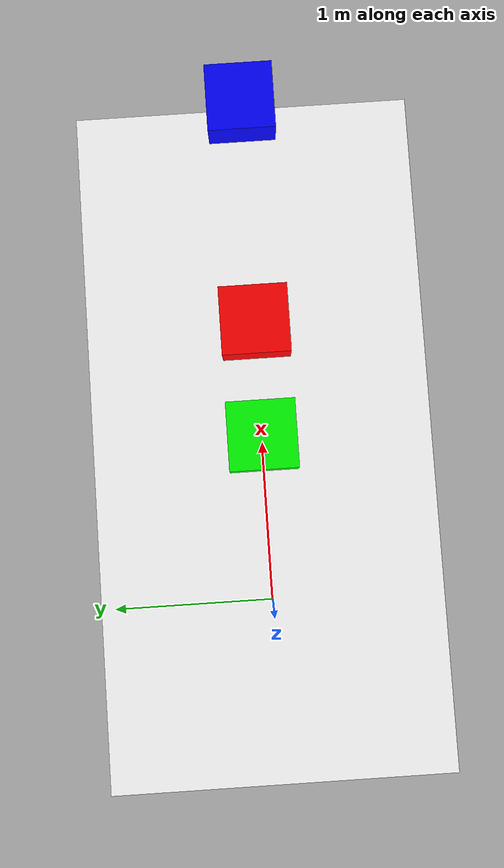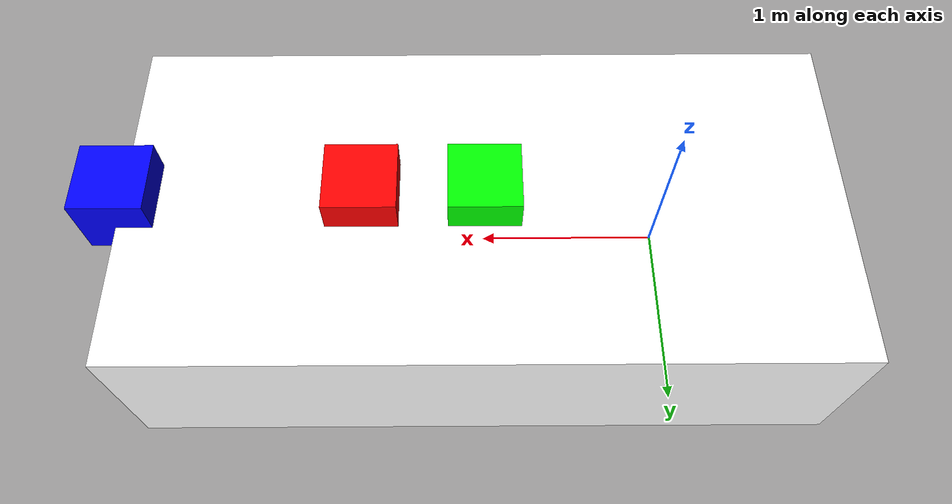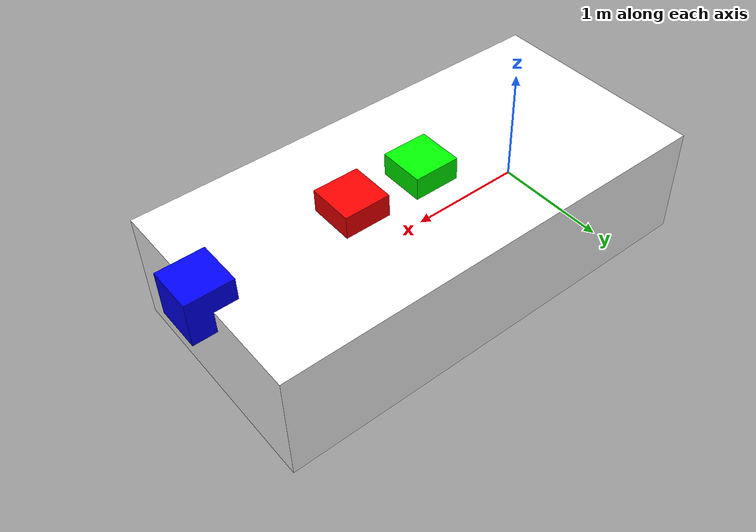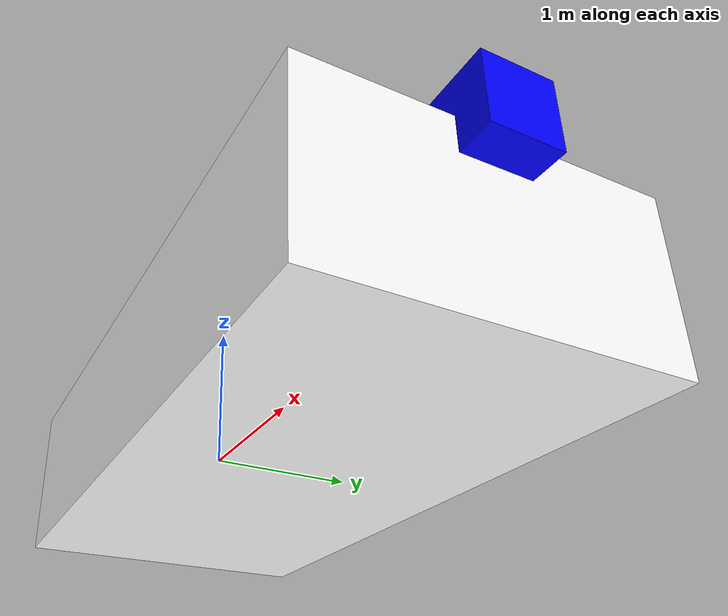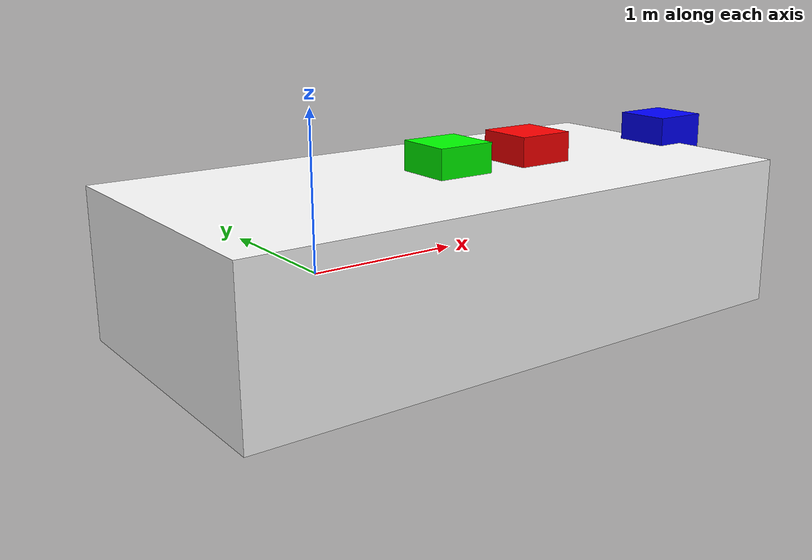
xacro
<?xml version="1.0" ?>
<robot name="voiture" xmlns:xacro="http://ros.org/wiki/xacro">

<link name="base_link">
    <visual name="car">
      <origin rpy="0 0 0" xyz="1 0 0"/>
      <geometry>
        <box size="4 2 1"/>
      </geometry>
      <material name="white">
        <color rgba="1 1 1 1"/>
      </material>
    </visual>

    <visual name="camera_me">
      <origin rpy="0 0 0" xyz="1.67 0 0.5"/>
      <geometry>
        <box size="0.4 0.4 0.4"/>
      </geometry>
      <material name="red">
        <color rgba="1 0 0 1"/>
      </material>
    </visual>

    <visual name="lidar">
      <origin rpy="0 0 0" xyz="1 0 0.5"/>
      <geometry>
        <box size="0.4 0.4 0.4"/>
      </geometry>
      <material name="green">
        <color rgba="0 1 0 1"/>
      </material>
    </visual>

    <visual name="radar">
      <origin rpy="0 0 0" xyz="3 0 0.5"/>
      <geometry>
        <box size="0.4 0.4 0.4"/>
      </geometry>
      <material name="blue">
        <color rgba="0 0 1 1"/>
      </material>
    </visual>
</link>

</robot>
